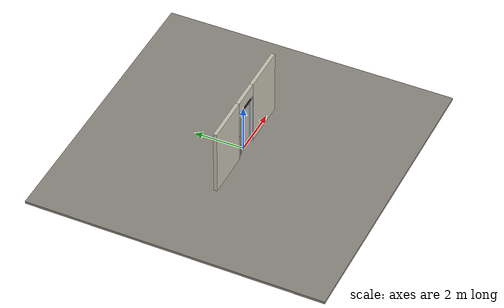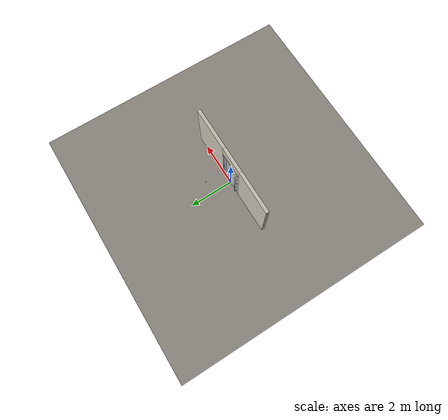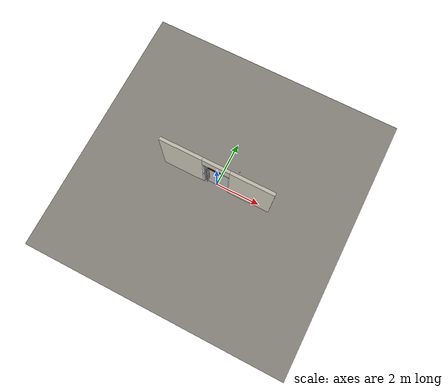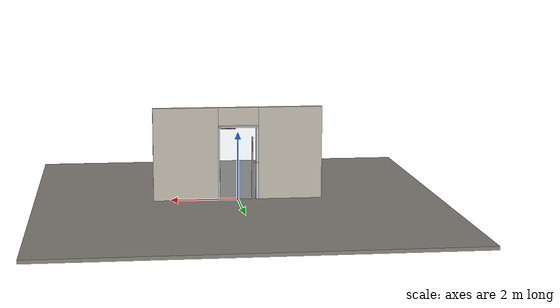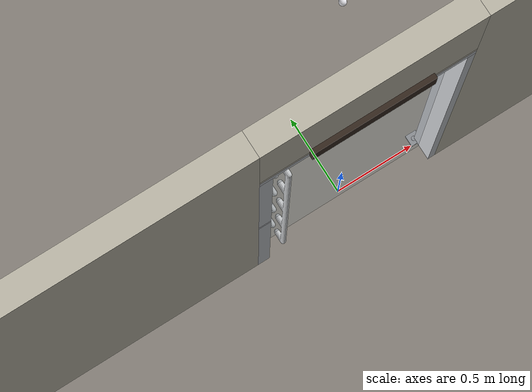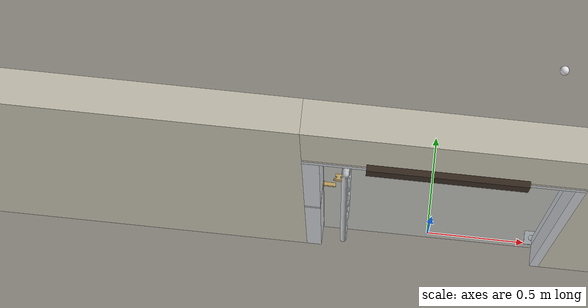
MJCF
<?xml version="1.0" ?>
<mujoco model="db0689_swing_single_full">
  <compiler angle="radian" meshdir="../../hardware" texturedir="../../textures" autolimits="true" inertiafromgeom="false"/>
  <option timestep="0.002" integrator="implicitfast" cone="elliptic" impratio="10" noslip_iterations="3">
    <flag multiccd="enable"/>
  </option>
  <size memory="16M"/>
  <default>
    <geom condim="4" solref="0.005 1" solimp="0.95 0.99 0.001"/>
    <joint solreflimit="0.005 1" solimplimit="0.95 0.99 0.001"/>
    <tendon solreflimit="0.005 1"/>
    <equality solref="0.002 1"/>
  </default>
  <visual>
    <headlight ambient="0.4 0.4 0.4" diffuse="0.7 0.7 0.7" specular="0.2 0.2 0.2"/>
    <quality shadowsize="4096"/>
    <map znear="0.01" zfar="60"/>
  </visual>
  <asset>
    <mesh name="pull_897e207f65" file="pull_897e207f65.obj"/>
    <mesh name="thumbturn_eb5c9899a3" file="thumbturn_eb5c9899a3.obj"/>
    <material name="mat_floor" rgba="0.55 0.53 0.5 1" specular="0.2" shininess="0.15" reflectance="0"/>
    <material name="mat_wall" rgba="0.78 0.76 0.7 1" specular="0.2" shininess="0.1" reflectance="0"/>
    <material name="mat_leaf" rgba="0.85 0.92 0.95 0.25" specular="0.2" shininess="0.95" reflectance="0.1"/>
    <material name="mat_glass_leaf" rgba="0.85 0.92 0.95 0.25" specular="0.2" shininess="0.95" reflectance="0.1"/>
    <material name="mat_patch" rgba="0.75 0.76 0.77 1" specular="0.8" shininess="0.65" reflectance="0.4"/>
    <material name="mat_hinge" rgba="0.65 0.66 0.68 1" specular="0.74" shininess="0.5" reflectance="0.36"/>
    <material name="mat_op_stainless" rgba="0.75 0.76 0.77 1" specular="0.8" shininess="0.65" reflectance="0.4"/>
    <material name="mat_deadbolt" rgba="0.85 0.66 0.3 1" specular="0.8" shininess="0.75" reflectance="0.4"/>
    <material name="mat_frame" rgba="0.8 0.81 0.83 1" specular="0.8" shininess="0.6" reflectance="0.4"/>
    <material name="mat_closer" rgba="0.22 0.17 0.13 1" specular="0.8" shininess="0.6" reflectance="0.4"/>
    <material name="mat_stop" rgba="0.9 0.9 0.92 1" specular="0.8" shininess="0.9" reflectance="0.4"/>
    <texture name="skybox" type="skybox" builtin="gradient" rgb1="0.6 0.7 0.85" rgb2="0.9 0.92 0.95" width="256" height="256"/>
  </asset>
  <worldbody>
    <light name="sun" pos="1.5 -2.5 4" dir="-0.3 0.5 -0.8" directional="true" diffuse="0.8 0.8 0.8" specular="0.3 0.3 0.3" castshadow="true"/>
    <light name="fill" pos="-1.5 2.5 3" dir="0.3 -0.5 -0.7" directional="true" diffuse="0.35 0.35 0.4" castshadow="false"/>
    <camera name="robot_view" pos="0 -2.680813 1.812087" xyaxes="1 0 0 0 0.26963 0.962964" fovy="52"/>
    <camera name="far_view" pos="0 2.594812 1.812087" xyaxes="-1 0 0 0 -0.26963 0.962964" fovy="52"/>
    <camera name="iso" pos="-2.004737 -2.258763 2.234138" xyaxes="0.741536 -0.670913 0 0.242917 0.268487 0.932151" fovy="46"/>
    <camera name="detail_handle" pos="-0.2495 -0.8875 1.245" xyaxes="0.97561 0.219512 0 -0.070934 0.315262 0.94635" fovy="38"/>
    <geom name="floor" type="box" size="6 6 0.05" pos="0 0 -0.05" material="mat_floor" group="0" contype="1" conaffinity="1" friction="0.8 0.005 0.0001" density="2400"/>
    <geom name="wall_left" type="box" size="0.94325 0.0725 1.3735" pos="-1.55675 -0.043 1.3735" material="mat_wall" group="0" contype="1" conaffinity="1" friction="0.6 0.005 0.0001" density="800"/>
    <geom name="wall_right" type="box" size="0.95825 0.0725 1.3735" pos="1.54175 -0.043 1.3735" material="mat_wall" group="0" contype="1" conaffinity="1" friction="0.6 0.005 0.0001" density="800"/>
    <geom name="wall_header" type="box" size="0.5985 0.0725 0.2625" pos="-0.015 -0.043 2.4845" material="mat_wall" group="0" contype="1" conaffinity="1" friction="0.6 0.005 0.0001" density="800"/>
    <geom name="pivot_bottom_socket" type="box" size="0.035 0.035 0.0085" pos="0.5355 0.0295 -0.0015" material="mat_hinge" group="1" contype="0" conaffinity="0" density="7850"/>
    <geom name="pivot_top_bracket" type="box" size="0.035 0.035 0.0355" pos="0.5355 0.0295 2.1865" material="mat_hinge" group="1" contype="0" conaffinity="0" density="7850"/>
    <geom name="leaf_deadbolt_strike_b" type="box" size="0.0155 0.003 0.0005" pos="-0.538 0 1.0865" quat="0.5 0.5 0.5 0.5" material="mat_deadbolt" group="1" contype="0" conaffinity="0" density="7800"/>
    <geom name="leaf_deadbolt_strike_l" type="box" size="0.003 0.0155 0.0005" pos="-0.538 -0.0125 1.105" quat="0.5 0.5 0.5 0.5" material="mat_deadbolt" group="1" contype="0" conaffinity="0" density="7800"/>
    <geom name="leaf_deadbolt_strike_t" type="box" size="0.0155 0.003 0.0005" pos="-0.538 0 1.1235" quat="0.5 0.5 0.5 0.5" material="mat_deadbolt" group="1" contype="0" conaffinity="0" density="7800"/>
    <geom name="leaf_deadbolt_strike_r" type="box" size="0.003 0.0155 0.0005" pos="-0.538 0.0125 1.105" quat="0.5 0.5 0.5 0.5" material="mat_deadbolt" group="1" contype="0" conaffinity="0" density="7800"/>
    <geom name="jamb_hinge" type="box" size="0.0225 0.0725 1.0735" pos="0.561 -0.043 1.0735" material="mat_frame" group="0" contype="1" conaffinity="1" friction="0.6 0.005 0.0001" density="300"/>
    <geom name="strike_1105_wall_n" type="box" size="0.0375 0.053 0.0155" pos="-0.576 -0.0625 1.105" material="mat_frame" group="0" contype="1" conaffinity="1" friction="0.6 0.005 0.0001" density="300"/>
    <geom name="strike_1105_wall_p" type="box" size="0.0375 0.01 0.0155" pos="-0.576 0.0195 1.105" material="mat_frame" group="0" contype="1" conaffinity="1" friction="0.6 0.005 0.0001" density="300"/>
    <geom name="strike_1105_back" type="box" size="0.0228 0.0095 0.0155" pos="-0.5907 0 1.105" material="mat_frame" group="0" contype="1" conaffinity="1" friction="0.6 0.005 0.0001" density="300"/>
    <geom name="jamb_strike_0" type="box" size="0.0375 0.0725 0.54475" pos="-0.576 -0.043 0.54475" material="mat_frame" group="0" contype="1" conaffinity="1" friction="0.6 0.005 0.0001" density="300"/>
    <geom name="jamb_strike_1" type="box" size="0.0375 0.0725 0.51325" pos="-0.576 -0.043 1.63375" material="mat_frame" group="0" contype="1" conaffinity="1" friction="0.6 0.005 0.0001" density="300"/>
    <geom name="jamb_head" type="box" size="0.5985 0.0725 0.0225" pos="-0.015 -0.043 2.1695" material="mat_frame" group="0" contype="1" conaffinity="1" friction="0.6 0.005 0.0001" density="300"/>
    <geom name="head_stud" type="box" size="0.5985 0.0725 0.015" pos="-0.015 -0.043 2.207" material="mat_wall" group="0" contype="1" conaffinity="1" friction="0.6 0.005 0.0001" density="500"/>
    <geom name="auto_operator_header" type="box" size="0.34 0.055 0.055" pos="0 -0.0875 2.218" material="mat_closer" group="0" contype="1" conaffinity="1" friction="0.6 0.005 0.0001" density="1500"/>
    <geom name="floor_stop_dome" type="sphere" size="0.025" pos="0.634731 0.934244 0" material="mat_stop" group="0" contype="1" conaffinity="1" friction="0.6 0.005 0.0001" density="7000"/>
    <site name="approach_point" pos="0 -1.5 0" quat="1 0 0 0" size="0.05" rgba="0.2 0.9 0.2 0.5" group="4"/>
    <site name="goal_point" pos="0 1.5 0" quat="1 0 0 0" size="0.05" rgba="0.2 0.9 0.2 0.5" group="4"/>
    <site name="door_plane_center" pos="0 0 1.0735" quat="1 0 0 0" size="0.02" rgba="0.2 0.9 0.2 0.5" group="4"/>
    <body name="leaf" pos="0.5385 0 0">
      <inertial pos="-0.615088 -0.000178 1.060403" mass="127.73481" quat="0.507984 -0.507911 -0.491674 -0.492175" diaginertia="13.583418965 46.815234209 60.026681387"/>
      <joint name="leaf_hinge" type="hinge" axis="0 0 -1" pos="-0.003 0.0295 0" limited="true" range="0 1.658063" damping="15.49954" frictionloss="1.733837" stiffness="53.756174" springref="-1.828813" armature="0.02"/>
      <geom name="leaf_glass" type="box" size="0.5335 0.0225 1.067" pos="-0.5395 0 1.076" material="mat_glass_leaf" group="0" contype="1" conaffinity="1" friction="0.4 0.005 0.0001" density="1"/>
      <geom name="pivot_bottom" type="cylinder" size="0.014 0.004" pos="-0.003 0.0295 0.004" material="mat_hinge" group="1" contype="0" conaffinity="0" density="7850"/>
      <geom name="pivot_top" type="cylinder" size="0.014 0.004" pos="-0.003 0.0295 2.147" material="mat_hinge" group="1" contype="0" conaffinity="0" density="7850"/>
      <geom name="leaf_pull_n" type="mesh" mesh="pull_897e207f65" pos="-0.968 -0.0225 0.965" quat="0 0 -0.707107 0.707107" material="mat_op_stainless" group="1" contype="0" conaffinity="0" density="3000"/>
      <geom name="leaf_pull_col_n" type="capsule" size="0.016 0.88" pos="-0.968 -0.0875 0.965" material="mat_op_stainless" group="3" contype="1" conaffinity="1" rgba="0.8 0.3 0.3 0.25" friction="0.7 0.01 0.0001" density="3000"/>
      <geom name="leaf_pull_p" type="mesh" mesh="pull_897e207f65" pos="-0.968 0.0225 0.965" quat="0 0 0.707107 0.707107" material="mat_op_stainless" group="1" contype="0" conaffinity="0" density="3000"/>
      <geom name="leaf_pull_col_p" type="capsule" size="0.016 0.88" pos="-0.968 0.0875 0.965" material="mat_op_stainless" group="3" contype="1" conaffinity="1" rgba="0.8 0.3 0.3 0.25" friction="0.7 0.01 0.0001" density="3000"/>
      <geom name="leaf_deadbolt_faceplate" type="box" size="0.0006 0.014 0.0245" pos="-1.0724 0 1.105" material="mat_deadbolt" group="1" contype="0" conaffinity="0" density="8500"/>
      <geom name="auto_operator_arm" type="box" size="0.22 0.008 0.008" pos="-0.25 -0.0525 2.114" material="mat_closer" group="1" contype="0" conaffinity="0" density="2700"/>
      <geom name="auto_operator_arm_shoe" type="box" size="0.03 0.016 0.014" pos="-0.44 -0.0385 2.114" material="mat_closer" group="1" contype="0" conaffinity="0" density="2700"/>
      <site name="leaf_pull_grip_n" pos="-0.968 -0.0875 0.965" quat="1 0 0 0" size="0.012" rgba="0.2 0.9 0.2 0.5" group="4"/>
      <site name="leaf_pull_grip_p" pos="-0.968 0.0875 0.965" quat="1 0 0 0" size="0.012" rgba="0.2 0.9 0.2 0.5" group="4"/>
      <site name="leaf_edge_mid" pos="-1.073 0 1.067" quat="1 0 0 0" size="0.02" rgba="0.2 0.9 0.2 0.5" group="4"/>
      <body name="leaf_deadbolt" pos="-1.073 0 1.105">
        <inertial pos="0.0277 0 0" mass="0.18836" quat="0 0 0.707107 0.707107" diaginertia="0.000013829 0.000052194 0.000057986"/>
        <joint name="leaf_deadbolt_slide" type="slide" axis="1 0 0" limited="true" range="0 0.0254" damping="5" frictionloss="1.5" armature="0.1" ref="0.0254"/>
        <geom name="leaf_deadbolt_box" type="box" size="0.0277 0.008 0.0125" pos="0.0277 0 0" material="mat_deadbolt" group="0" contype="1" conaffinity="1" friction="0.3 0.005 0.0001" density="8500"/>
      </body>
      <body name="leaf_deadbolt_thumbturn" pos="-1.008 0.0225 1.105">
        <inertial pos="0 0.012928 0" mass="0.178946" quat="0.000001 -0.707107 0.707107 -0.000001" diaginertia="0.000026045 0.000026215 0.000032438"/>
        <joint name="leaf_deadbolt_thumbturn_hinge" type="hinge" axis="0 -1 0" limited="true" range="0 1.5708" damping="0.05" frictionloss="0.3" armature="0.005" ref="1.5708"/>
        <geom name="leaf_deadbolt_thumbturn_mesh" type="mesh" mesh="thumbturn_eb5c9899a3" pos="0 0 0" quat="0.500001 -0.500001 0.499999 0.499999" material="mat_deadbolt" group="0" contype="1" conaffinity="1" friction="0.6 0.005 0.0001" density="7100"/>
        <geom name="leaf_deadbolt_thumbturn_col" type="box" size="0.006 0.012 0.016" pos="0 0.02 0" quat="0.707105 0 -0.707108 0" material="mat_deadbolt" group="3" contype="1" conaffinity="1" rgba="0.8 0.3 0.3 0.25" friction="0.6 0.005 0.0001" density="7100"/>
      </body>
    </body>
  </worldbody>
  <equality>
    <joint name="leaf_deadbolt_couple" joint1="leaf_deadbolt_slide" joint2="leaf_deadbolt_thumbturn_hinge" polycoef="0 0.01617 0 0 0" active="true"/>
  </equality>
  <contact>
    <exclude body1="leaf_deadbolt" body2="leaf_deadbolt_thumbturn"/>
  </contact>
  <sensor>
    <jointpos name="leaf_hinge_pos" joint="leaf_hinge"/>
    <jointvel name="leaf_hinge_vel" joint="leaf_hinge"/>
    <jointpos name="leaf_deadbolt_slide_pos" joint="leaf_deadbolt_slide"/>
    <jointvel name="leaf_deadbolt_slide_vel" joint="leaf_deadbolt_slide"/>
    <jointpos name="leaf_deadbolt_thumbturn_hinge_pos" joint="leaf_deadbolt_thumbturn_hinge"/>
    <jointvel name="leaf_deadbolt_thumbturn_hinge_vel" joint="leaf_deadbolt_thumbturn_hinge"/>
  </sensor>
</mujoco>
